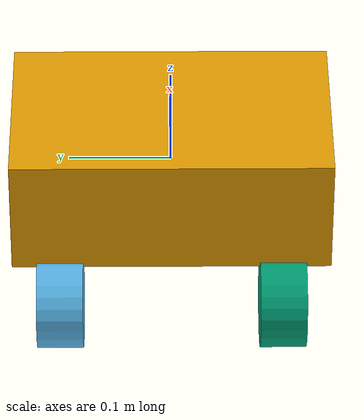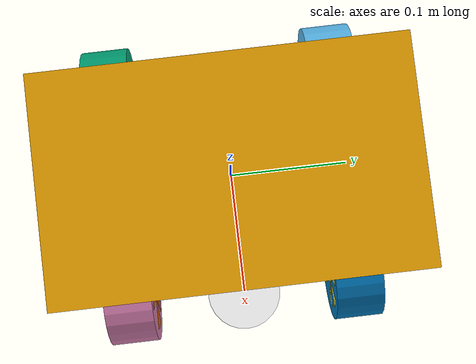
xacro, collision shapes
<?xml version="1.0"?>
<robot name="limo_four_diff" xmlns:xacro="http://www.ros.org/wiki/xacro">
    <xacro:include filename="$(find limo_car)/gazebo/four_diff.xacro" />
    <xacro:limo_four_diff />
    <xacro:include filename="$(find limo_car)/gazebo/sensor.xacro" />

    <!-- Sensor poses: ROS1 limo_description/urdf/limo_four_diff.xacro.
         These are simulation base_link offsets, not the real-robot static TF. -->
    <xacro:gazebo_laser frame_prefix="laser" />
    <joint name="laser_joint" type="fixed">
        <origin xyz="0.103 0 -0.034" rpy="0 0 0"/>
        <parent link="base_link"/>
        <child link="laser_link"/>
    </joint>

    <xacro:gazebo_depth_camera frame_prefix="depth_camera" />
    <joint name="depth_camera_joint" type="fixed">
        <origin xyz="0.084 0 0.03" rpy="0 0 0"/>
        <parent link="base_link"/>
        <child link="depth_camera_link"/>
    </joint>

    <xacro:gazebo_imu frame_prefix="imu" />
    <joint name="imu_joint" type="fixed">
        <origin xyz="0.0 0 -0.1" rpy="0 0 0"/>
        <parent link="base_link"/>
        <child link="imu_link"/>
    </joint>
</robot>

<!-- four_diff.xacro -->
<!--Auto: Zhui Li-->
<!--E-Mail: lz554113510@gmail.com -->
<!--Company: Institut für Intermodale Transport- und Logistiksysteme in Technische Universität Braunschweig -->

<robot name="limo_four_diff" xmlns:xacro="http://www.ros.org/wiki/xacro">

    <!-- ******************************** Paramenten zu definieren ************************************* -->
    <!-- definiert Value -->
    <xacro:property name="M_PI" value="3.14159"/>

    <!-- das Value sind all gemessen -->
    <xacro:property name="base_mass" value="4.34"/>
    <xacro:property name="base_x_size" value="0.19" />
    <xacro:property name="base_y_size" value="0.31" />
    <xacro:property name="base_z_size" value="0.12" />

    <!-- ROS1 limo_base/include/limo_driver.h: wheelbase_ and track_. -->
    <xacro:property name="wheelbase" value="0.20"/>
    <xacro:property name="track" value="0.172"/>
    <xacro:property name="wheel_vertical_offset" value="-0.10" />

    <xacro:property name="wheel_mass" value="0.5" />
    <xacro:property name="wheel_length" value="0.045" />
    <xacro:property name="wheel_radius" value="0.045" />

    <!-- definieren die Macro-Function für die Rechnungen der Matrizen für Trägheitsmoment-->
    <!-- Zylinder -->
    <xacro:macro name="cylinder_inertial_matrix" params="m r h">
        <inertial>
            <origin xyz="0.0 0.0 0.0" />
            <mass value="${m}" />
            <inertia ixx="${m*(3*r*r+h*h)/12}" ixy = "0" ixz = "0"
                     iyy="${m*(3*r*r+h*h)/12}" iyz = "0"
                     izz="${m*r*r/2}" />
        </inertial>
    </xacro:macro>
    <!-- Quader -->
    <xacro:macro name="box_inertial_matrix" params="m w l h">
        <inertial>
            <origin xyz="0.0 0.0 0.0" />
            <mass value="${m}" />
            <inertia ixx="${m*(w*w+h*h)/12}" ixy = "0" ixz = "0"
                     iyy="${m*(h*h+l*l)/12}" iyz = "0"
                     izz="${m*(w*w+l*l)/12}" />
        </inertial>
    </xacro:macro>

    <!-- **************************** Makrofunktion zu definieren ************************************** -->
    <!-- Makrofunktion für vorderen Räder mit Steuerscharnier-->
    <!-- front left -->
    <xacro:macro name="limo_left_steering_hinge" params="parent_prefix wheel_prefix *joint_pose">
        <link name="${wheel_prefix}_steer_link">
            <inertial>
                <!-- diese Daten kommen aus den Herstellern -->
                <mass value="0.25" />
                <inertia ixx="0.00525" ixy="0" ixz="0" iyy="0.00035" iyz="0" izz="0.00525" />
                <origin xyz="0 0 0" />
            </inertial>
            <visual>
                <origin xyz="0 0 0" rpy="0 0 0" />
                <geometry>
                    <!-- es ist sehr klein, einfach als Klein definiert wird -->
                    <cylinder length="0.0001" radius="0.0001" />
                </geometry>
            </visual>
            <collision>
                <origin xyz="0 ${wheel_length/2} 0" rpy="${M_PI/2} 0 0" />
                <geometry>
                    <cylinder length="${wheel_length}" radius="${wheel_radius-0.01}" />
                </geometry>
            </collision>
        </link>

        <!-- Four-diff mode: keep the front wheel pointing straight. -->
        <joint name="${wheel_prefix}_steer_joint" type="fixed">
            <parent link="${parent_prefix}"/>
            <child link="${wheel_prefix}_steer_link"/>
            <xacro:insert_block name="joint_pose"/>
            <axis xyz="0 0 1" />
            <!-- Paramenten von Herstellern -->
            <limit lower="-0.523598767" upper="0.523598767" effort="5" velocity="0.5" />
            <dynamics damping="1.0" friction="2.0"/>
        </joint>

        <transmission name="${wheel_prefix}_hinge_trans" type="SimpleTransmission">
            <type>transmission_interface/SimpleTransmission</type>
            <actuator name="${wheel_prefix}_hinge_motor">
                <hardwareInterface>hardware_interface/EffortJointInterface</hardwareInterface>
                <mechanicalReduction>1</mechanicalReduction>
            </actuator>
            <joint name="${wheel_prefix}_steer_joint">
                <hardwareInterface>hardware_interface/EffortJointInterface</hardwareInterface>
            </joint>
        </transmission>

        <link name="${wheel_prefix}_wheel_link">
            <visual>
                <origin xyz="0 0 0" rpy="0 0 0" />
                <geometry>
                    <mesh filename="file://$(find limo_car)/meshes/limo_wheel.dae" scale="1.2 1.2 1.2"/>
                </geometry>
            </visual>
            <collision>
                <origin xyz="0 ${wheel_length/2} 0" rpy="${M_PI/2} 0 0" />
                <geometry>
                    <cylinder length="${wheel_length}" radius="${wheel_radius}" />
                </geometry>
            </collision>
            <xacro:cylinder_inertial_matrix  m="${wheel_mass}" r="${wheel_radius}"  h="${wheel_length}" />
        </link>

        <joint name="${wheel_prefix}_wheel_joint" type="continuous">
            <parent link="${wheel_prefix}_steer_link"/>
            <child link="${wheel_prefix}_wheel_link"/>
            <origin xyz="0 0 0" rpy="0 0 0" />
            <axis xyz="0 1 0"/>
        </joint>

        <transmission name="${wheel_prefix}_wheel_trans" type="SimpleTransmission">
            <type>transmission_interface/SimpleTransmission</type>
            <actuator name="${wheel_prefix}_wheel_motor">
                <!-- Type für den Topic(Paramenten) -->
                <hardwareInterface>hardware_interface/VelocityJointInterface</hardwareInterface>
                <mechanicalReduction>1</mechanicalReduction>
            </actuator>
            <joint name="${wheel_prefix}_wheel_joint">
                <hardwareInterface>hardware_interface/VelocityJointInterface</hardwareInterface>
            </joint>
        </transmission>
    </xacro:macro>

    <!-- front right -->
    <xacro:macro name="limo_right_steering_hinge" params="parent_prefix wheel_prefix *joint_pose">
        <link name="${wheel_prefix}_steer_link">
            <inertial>
                <mass value="0.25" />
                <inertia ixx="0.00525" ixy="0" ixz="0" iyy="0.00035" iyz="0" izz="0.00525" />
                <origin xyz="0 0 0" />
            </inertial>
            <visual>
                <origin xyz="0 0 0" rpy="0 0 0" />
                <geometry>
                    <cylinder length="0.0001" radius="0.0001" />
                </geometry>
            </visual>
            <collision>
                <origin xyz="0 ${wheel_length/2} 0" rpy="${M_PI/2} 0 0" />
                <geometry>
                    <cylinder length="${wheel_length}" radius="${wheel_radius-0.01}" />
                </geometry>
            </collision>
        </link>

        <!-- Four-diff mode: keep the front wheel pointing straight. -->
        <joint name="${wheel_prefix}_steer_joint" type="fixed">
            <parent link="${parent_prefix}"/>
            <child link="${wheel_prefix}_steer_link"/>
            <xacro:insert_block name="joint_pose"/>
            <axis xyz="0 0 -1"/>
            <limit lower="-0.523598767" upper="0.523598767" effort="5" velocity="0.5" />
            <dynamics damping="1.0" friction="2.0"/>
        </joint>

        <transmission name="${wheel_prefix}_hinge_trans" type="SimpleTransmission">
            <type>transmission_interface/SimpleTransmission</type>
            <actuator name="${wheel_prefix}_hinge_motor">
                <hardwareInterface>hardware_interface/EffortJointInterface</hardwareInterface>
                <mechanicalReduction>1</mechanicalReduction>
            </actuator>
            <joint name="${wheel_prefix}_steer_joint">
                <hardwareInterface>hardware_interface/EffortJointInterface</hardwareInterface>
            </joint>
        </transmission>

        <link name="${wheel_prefix}_wheel_link">
            <visual>
                <origin xyz="0 0 0" rpy="0 0 0" />
                <geometry>
                    <mesh filename="file://$(find limo_car)/meshes/limo_wheel.dae" scale="1.2 1.2 1.2" />
                </geometry>
            </visual>
            <collision>
                <origin xyz="0 ${wheel_length/2} 0" rpy="${M_PI/2} 0 0" />
                <geometry>
                    <cylinder length="${wheel_length}" radius="${wheel_radius}" />
                </geometry>
            </collision>
            <xacro:cylinder_inertial_matrix  m="${wheel_mass}" r="${wheel_radius}"  h="${wheel_length}" />
        </link>

        <joint name="${wheel_prefix}_wheel_joint" type="continuous">
            <parent link="${wheel_prefix}_steer_link"/>
            <child link="${wheel_prefix}_wheel_link"/>
            <origin xyz="0 0 0" rpy="0 0  0" />
            <axis xyz="0 -1 0"/>
        </joint>

        <transmission name="${wheel_prefix}_wheel_trans" type="SimpleTransmission">
            <type>transmission_interface/SimpleTransmission</type>
            <actuator name="${wheel_prefix}_wheel_motor">
                <!-- Type für den Topic(Paramenten) -->
                <hardwareInterface>hardware_interface/VelocityJointInterface</hardwareInterface>
                <mechanicalReduction>1</mechanicalReduction>
            </actuator>
            <joint name="${wheel_prefix}_wheel_joint">
                <hardwareInterface>hardware_interface/VelocityJointInterface</hardwareInterface>
            </joint>
        </transmission>
    </xacro:macro>

    <!-- ***************************************** Base zu bauen *************************************** -->
    <!-- erstellt Hauptanteil des Modells, definiert ein Nullpunkt, um Modell aufzubauen. Es ist einfach für weitere
    Darstellungspostion in Simulation-Umgebung -->
    <xacro:macro name="limo_four_diff">

        <!-- herstellt base_link -->
        <link name="base_link">
            <visual>
                <origin xyz="0 0 -0.15" rpy="0 0 ${M_PI/2}" />
                <geometry>
                    <!-- Modell von Hersteller, aber es ist kleiner als realen Produkt, da die Skale vergrößert wird -->
                    <mesh filename="file://$(find limo_car)/meshes/limo_base.dae" scale="1.2 1.2 1.2" />
                </geometry>
            </visual>
            <!-- Modell für physikalische Kollision zu modellieren. -->
            <collision>
                <origin xyz="0 0 0" rpy="0 0 0" />
                <geometry>
                    <box size="${base_x_size} ${base_y_size} ${base_z_size}"/>
                </geometry>
            </collision>
            <xacro:box_inertial_matrix  m="${base_mass}" w="${base_x_size}" l="${base_y_size}" h="${base_z_size}" />
        </link>

        <gazebo reference="base_link">
            <material>
                <color rgba="0 0 0 0.5"/>
            </material>
        </gazebo>

        <!-- hinten Räder -->
        <link name="rear_left_wheel_link">
            <visual>
                <origin xyz="0 0 0" rpy="0 0 0" />
                <geometry>
                    <mesh filename="file://$(find limo_car)/meshes/limo_wheel.dae" scale="1.2 1.2 1.2"/>
                </geometry>
            </visual>
            <collision>
                <origin xyz="0 ${wheel_length/2} 0" rpy="${M_PI/2} 0 0" />
                <geometry>
                    <cylinder length="${wheel_length}" radius="${wheel_radius}" />
                </geometry>
            </collision>
            <xacro:cylinder_inertial_matrix  m="${wheel_mass}" r="${wheel_radius}" h="${wheel_length}"/>
        </link>

        <joint name="rear_left_wheel_joint" type="continuous">
            <parent link="base_link"/>
            <child link="rear_left_wheel_link"/>
            <origin xyz="${-wheelbase/2} ${track/2} ${wheel_vertical_offset}" rpy="0 0 0" />
            <axis xyz="0 1 0"/>
        </joint>

        <transmission name="rear_left_wheel_trans" type="SimpleTransmission">
            <type>transmission_interface/SimpleTransmission</type>
            <actuator name="rear_left_wheel_motor">
                <hardwareInterface>hardware_interface/VelocityJointInterface</hardwareInterface>
                <mechanicalReduction>1</mechanicalReduction>
            </actuator>
            <joint name="rear_left_wheel_joint">
                <hardwareInterface>hardware_interface/VelocityJointInterface</hardwareInterface>
            </joint>
        </transmission>

        <link name="rear_right_wheel_link">
            <visual>
                <origin xyz="0 0 0" rpy="0 0 0" />
                <geometry>
                    <mesh filename="file://$(find limo_car)/meshes/limo_wheel.dae" scale="1.2 1.2 1.2"/>
                </geometry>
            </visual>
            <collision>
                <origin xyz="0 ${wheel_length/2} 0" rpy="${M_PI/2} 0 0" />
                <geometry>
                    <cylinder length="${wheel_length}" radius="${wheel_radius}" />
                </geometry>
            </collision>
            <xacro:cylinder_inertial_matrix  m="${wheel_mass}" r="${wheel_radius}" h="${wheel_length}"/>
        </link>

        <joint name="rear_right_wheel_joint" type="continuous">
            <parent link="base_link"/>
            <child link="rear_right_wheel_link"/>
            <origin xyz="${-wheelbase/2} ${-track/2} ${wheel_vertical_offset}" rpy="${M_PI} 0 0" />
            <axis xyz="0 -1 0"/>
        </joint>

        <transmission name="rear_right_wheel_trans" type="SimpleTransmission">
            <type>transmission_interface/SimpleTransmission</type>
            <actuator name="rear_right_wheel_motor">
                <hardwareInterface>hardware_interface/VelocityJointInterface</hardwareInterface>
                <mechanicalReduction>1</mechanicalReduction>
            </actuator>
            <joint name="rear_right_wheel_joint">
                <hardwareInterface>hardware_interface/VelocityJointInterface</hardwareInterface>
            </joint>
        </transmission>

        <!-- ruft Steuerscharnier mit vorderem Räder auf -->
        <xacro:limo_left_steering_hinge parent_prefix="base_link" wheel_prefix="front_left">
            <origin xyz="${wheelbase/2} ${track/2} ${wheel_vertical_offset}" rpy="0 0 0" />
        </xacro:limo_left_steering_hinge>

        <xacro:limo_right_steering_hinge parent_prefix="base_link" wheel_prefix="front_right">
            <origin xyz="${wheelbase/2} ${-track/2} ${wheel_vertical_offset}" rpy="${M_PI} 0 0" />
        </xacro:limo_right_steering_hinge>

        <!-- ********************************** Kontrolle zu erstellen ************************************* -->
        <gazebo>
            <!-- Four-wheel skid-steer drive: both wheels on each side receive
                 the same velocity command from gazebo_ros_diff_drive. -->
            <plugin name="limo_four_diff_controller" filename="libgazebo_ros_diff_drive.so">
                <ros>
                    <remapping>cmd_vel:=/cmd_vel</remapping>
                    <remapping>odom:=/odom</remapping>
                </ros>
                <update_rate>100</update_rate>
                <num_wheel_pairs>2</num_wheel_pairs>
                <left_joint>front_left_wheel_joint</left_joint>
                <left_joint>rear_left_wheel_joint</left_joint>
                <right_joint>front_right_wheel_joint</right_joint>
                <right_joint>rear_right_wheel_joint</right_joint>
                <wheel_separation>${track}</wheel_separation>
                <wheel_separation>${track}</wheel_separation>
                <wheel_diameter>${2 * wheel_radius}</wheel_diameter>
                <wheel_diameter>${2 * wheel_radius}</wheel_diameter>
                <max_wheel_torque>20.0</max_wheel_torque>
                <max_wheel_acceleration>5.0</max_wheel_acceleration>
                <publish_rate>50.0</publish_rate>
                <publish_odom>true</publish_odom>
                <publish_odom_tf>true</publish_odom_tf>
                <publish_wheel_tf>true</publish_wheel_tf>
                <odometry_frame>odom</odometry_frame>
                <robot_base_frame>base_link</robot_base_frame>
            </plugin>
        </gazebo>
    </xacro:macro>
</robot>

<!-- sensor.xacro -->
<!-- Autor: Zhui Li -->
<!--E-Mail: lz554113510@gmail.com -->
<!--Company: Institut für Intermodale Transport- und Logistiksysteme in Technische Universität Braunschweig -->

<robot name="limo_sensor" xmlns:xacro="http://www.ros.org/wiki/xacro">

    <!-- ******************************* Makrofunktion für Laser-Sensor ***************************** -->
    <xacro:macro name="gazebo_laser" params="frame_prefix">
        <link name='${frame_prefix}_link'>
            <inertial>
                <mass value="0.1"/>
                <origin xyz="0.0 0 0" rpy="0 0 0"/>
                <inertia
                        ixx="1e-6" ixy="0" ixz="0"
                        iyy="1e-6" iyz="0"
                        izz="1e-6"
                />
            </inertial>
            <visual name='laser_visual'>
                <origin xyz="0 0 0" rpy="0 0 0"/>
                <geometry>
                    <cylinder radius="0.02" length="0.01"/>
                </geometry>
                <material name='laser_material'>
                    <color rgba="1 1 1 1" />
                    <ambient>0.1 0.1 0.1 1</ambient>
                    <diffuse>0.1 0.1 0.2 1</diffuse>
                    <specular>0 0 0 0</specular>
                    <emissive>0 0 0 1</emissive>
                </material>
            </visual>
            <collision name='laser_collision'>
                <origin xyz="0 0 0" rpy="0 0 0"/>
                <geometry>
                    <cylinder radius="0.032" length="0.016"/>
                </geometry>
            </collision>
        </link>

        <gazebo reference="${frame_prefix}_link">
            <sensor type="ray" name="laser_sensor">
                <visualize>false</visualize>
                <update_rate>8</update_rate>
                <ray>
                    <scan>
                        <horizontal>
                            <samples>720</samples>
                            <resolution>1</resolution>
                            <min_angle>-2.09439504</min_angle> <!-- Einheit in "rad", von Hersteller -->
                            <max_angle>2.09439504</max_angle>
                        </horizontal>
                    </scan>
                    <range>
                        <min>0.2</min>
                        <max>8.0</max>
                        <resolution>0.01</resolution>
                    </range>
                    <!-- um bessere Realität zu simulieren, wird Rauschen auch addiert -->
                    <noise>
                        <type>gaussian</type>
                        <mean>0.0</mean>
                        <stddev>0.01</stddev>
                    </noise>
                </ray>
                <plugin name="gazebo_ros_laser_sensor" filename="libgazebo_ros_ray_sensor.so">
                    <ros>
                        <namespace>/</namespace>
                        <remapping>~/out:=scan</remapping>
                    </ros>
                    <!-- Fixed-joint reduction otherwise labels scans as base_link. -->
                    <frame_name>${frame_prefix}_link</frame_name>
                    <output_type>sensor_msgs/LaserScan</output_type>
                    <min_intensity>150.0</min_intensity>
                </plugin>
            </sensor>
        </gazebo>
    </xacro:macro>

    <!-- ******************************* Makrofunktion für Depth-Camera ***************************** -->
    <xacro:macro name="gazebo_depth_camera" params="frame_prefix">
        <link name='${frame_prefix}_link'>
            <origin xyz="0 0 0" rpy="0 0 0"/>
            <inertial>
                <mass value="0.1"/>
                <origin xyz="0.0 0 0" rpy="0 0 0"/>
                <inertia
                        ixx="1e-6" ixy="0" ixz="0"
                        iyy="1e-6" iyz="0"
                        izz="1e-6"
                />
            </inertial>
            <visual name='depth_camera_visual'>
                <origin xyz="0 0 0" rpy="0 0 0"/>
                <geometry>
                    <box size="0.02 0.06 0.015"/>
                </geometry>
                <material name='depth_camera_material'>
                    <color rgba="0.75 0.75 0.75 1" />
                    <ambient>0.1 0.1 0.1 1</ambient>
                    <diffuse>0.1 0.1 0.2 1</diffuse>
                    <specular>0 0 0 0</specular>
                    <emissive>0 0 0 1</emissive>
                </material>
            </visual>
            <collision name='depth_camera_collision'>
                <origin xyz="0 0 0" rpy="0 0 0"/>
                <geometry>
                    <box size="0.02 0.06 0.015"/>
                </geometry>
            </collision>
        </link>

        <link name="depth_link" />

        <joint name="${frame_prefix}_to_camera_joint" type="fixed">
            <origin xyz="0 0 0" rpy="-1.570796 0 -1.570796 "/>
            <parent link="${frame_prefix}_link"/>
            <child link="depth_link"/>
        </joint>

        <gazebo reference="${frame_prefix}_link">
            <sensor name="sensor_camera" type="depth">
                <pose>0.0 0.0 0.0 0.0 0.0 0.0</pose>
                <always_on>true</always_on>
                <visualize>true</visualize>
                <update_rate>10.0</update_rate>
                <camera name="head">
                    <horizontal_fov>1.3962634</horizontal_fov> <!-- 60*pi/180 -->
                    <!-- normalisieren die Form für Fotos -->
                    <image>
                        <width>640</width>
                        <height>480</height>
                        <format>R8G8B8</format>
                    </image>
                    <clip>
                        <near>0.15</near>
                        <far>8.0</far>
                    </clip>
                </camera>
                <plugin name="gazebo_ros_depth_camera_sensor" filename="libgazebo_ros_camera.so">
                    <ros>
                        <remapping>${frame_prefix}/image_raw:=rgb/image_raw</remapping>
                        <remapping>${frame_prefix}/image_depth:=depth/image_raw</remapping>
                        <remapping>${frame_prefix}/camera_info:=rgb/camera_info</remapping>
                        <remapping>${frame_prefix}/camera_info_depth:=depth/camera_info</remapping>
                        <remapping>${frame_prefix}/points:=depth/points</remapping>
                    </ros>
                    <camera_name>${frame_prefix}</camera_name>
                    <frame_name>depth_link</frame_name>
                    <hack_baseline>0.07</hack_baseline>
                    <min_depth>0.001</min_depth>
                    <max_depth>300.0</max_depth>
                </plugin>
            </sensor>
        </gazebo>
    </xacro:macro>

    <!-- ******************************* Makrofunktion für IMU ***************************** -->
    <xacro:macro name="gazebo_imu" params="frame_prefix">
        <link name='${frame_prefix}_link'>
            <pose>0 0 0 0 0 0</pose>
            <inertial>
                <mass value="0.01"/>
                <origin xyz="0.0 0 0" rpy="0 0 0"/>
                <inertia
                        ixx="1e-7" ixy="0" ixz="0"
                        iyy="1e-7" iyz="0"
                        izz="1e-7"
                />
            </inertial>
            <visual name='imu_visual'>
                <origin xyz="0 0 0" rpy="0 0 0"/>
                <geometry>
                    <box size="0.001 0.001 0.001"/>
                </geometry>
                <material name='imu_material'>
                    <color rgba="0.75 0.75 0.75 1" />
                    <ambient>0.1 0.1 0.1 1</ambient>
                    <diffuse>0.1 0.1 0.2 1</diffuse>
                    <specular>0 0 0 0</specular>
                    <emissive>0 0 0 1</emissive>
                </material>
            </visual>
            <collision name='imu_collision'>
                <origin xyz="0 0 0" rpy="0 0 0"/>
                <geometry>
                    <box size="0.001 0.001 0.001"/>
                </geometry>
            </collision>
        </link>

        <gazebo reference="${frame_prefix}_link">
            <gravity>true</gravity>
            <sensor name="imu_sensor" type="imu">
                <always_on>true</always_on>
                <update_rate>100</update_rate>
                <visualize>true</visualize>
                <topic>__default_topic__</topic>
                <pose>0 0 0 0 0 0</pose>

                <plugin filename="libgazebo_ros_imu_sensor.so" name="imu_plugin">
                    <ros>
                        <remapping>~/out:=/imu_plugin/out</remapping>
                    </ros>
                    <frame_name>${frame_prefix}_link</frame_name>
                    <initial_orientation_as_reference>false</initial_orientation_as_reference>
                </plugin>
            </sensor>
        </gazebo>
    </xacro:macro>
</robot>
